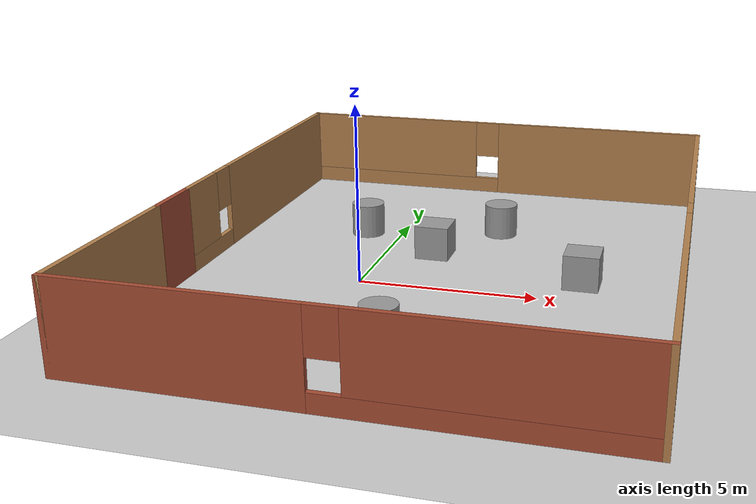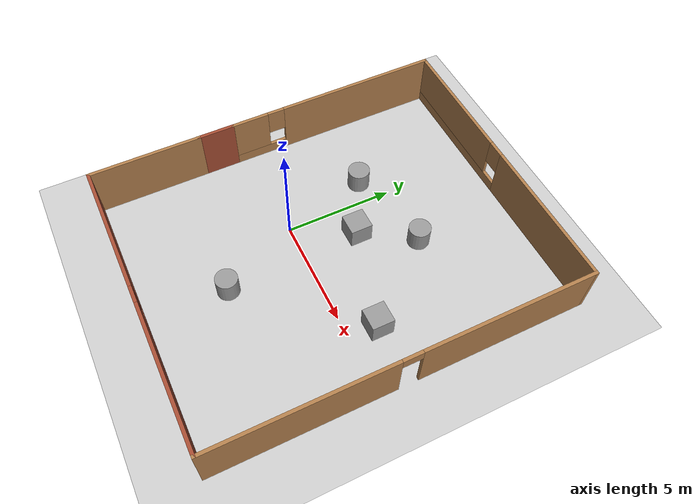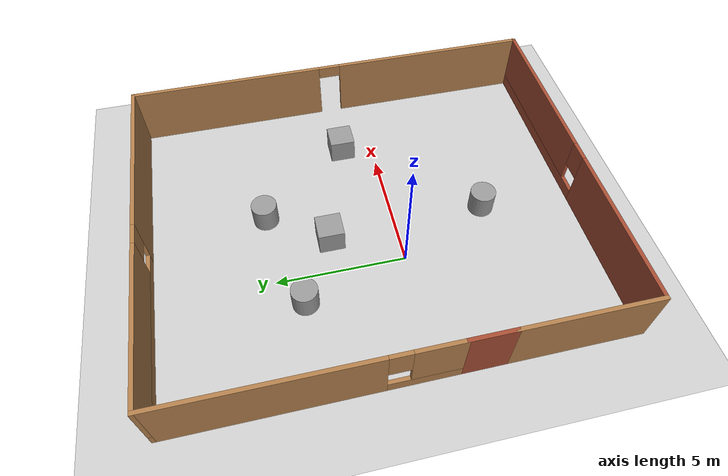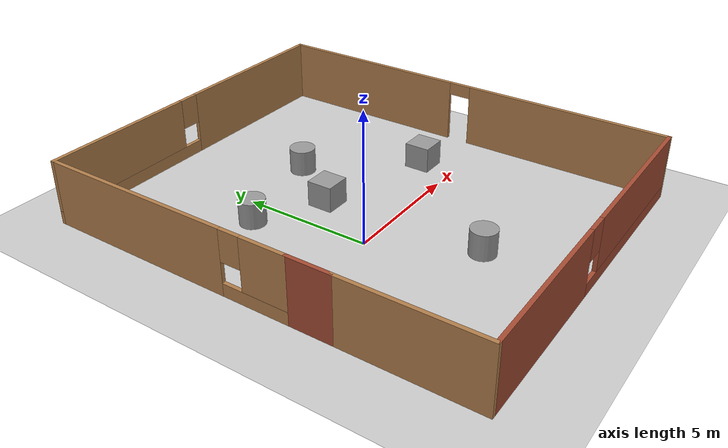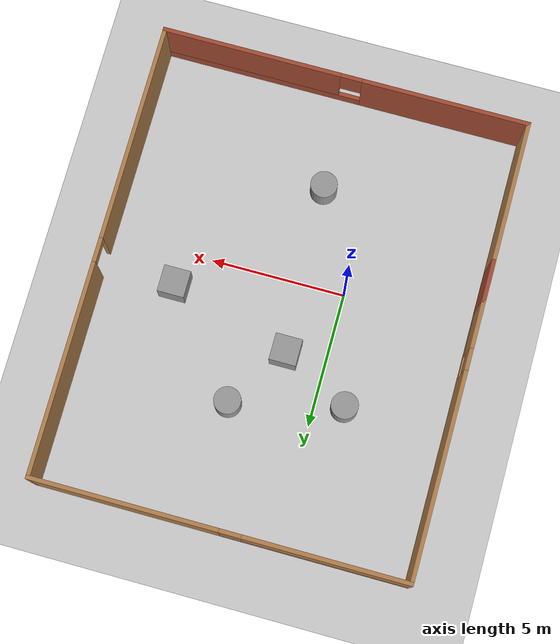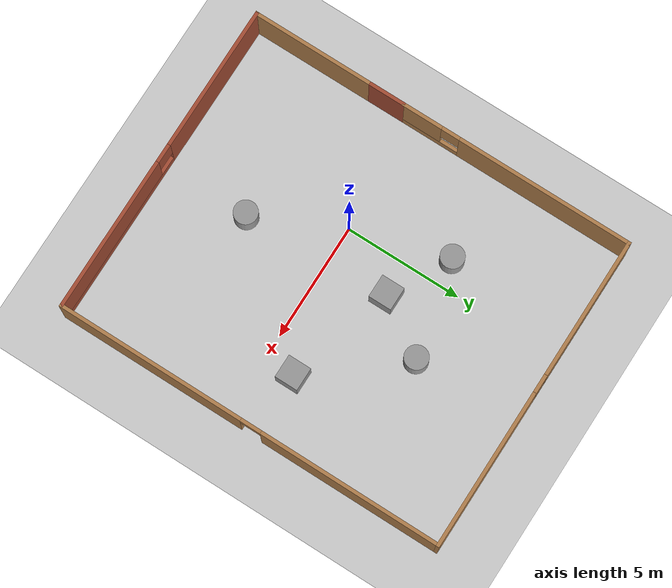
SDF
<sdf version="1.6">
 <world name="default">
  <light name="sun" type="directional">
   <pose>0 0 10 0 -0 0</pose>
   <diffuse>0.8 0.8 0.8 1</diffuse>
   <specular>0.2 0.2 0.2 1</specular>
   <attenuation>
    <range>1000</range>
    <constant>0.9</constant>
    <linear>0.01</linear>
    <quadratic>0.001</quadratic>
   </attenuation>
   <direction>0.5 0.1 -0.9</direction>
  </light>
  <model name="ground_plane">
   <static>1</static>
   <link name="link">
    <collision name="collision">
     <geometry><plane><normal>0 0 1</normal><size>100 100</size></plane></geometry>
     <surface><friction><ode><mu>100</mu><mu2>50</mu2></ode></friction></surface>
    </collision>
    <visual name="visual">
     <cast_shadows>0</cast_shadows>
     <geometry><plane><normal>0 0 1</normal><size>100 100</size></plane></geometry>
     <material>
      <script><uri>file://media/materials/scripts/gazebo.material</uri><name>Gazebo/Grey</name></script>
     </material>
    </visual>
    <velocity_decay><linear>0</linear><angular>0</angular></velocity_decay>
   </link>
  </model>
  <scene><ambient>0.4 0.4 0.4 1</ambient><background>0.7 0.7 0.7 1</background><shadows>0</shadows></scene>
  <physics name="default_physics" default="0" type="ode">
   <max_step_size>0.01</max_step_size>
   <real_time_factor>1</real_time_factor>
   <real_time_update_rate>0</real_time_update_rate>
  </physics>
  <gravity>0 0 -9.8</gravity>
  <magnetic_field>6e-06 2.3e-05 -4.2e-05</magnetic_field>
  <atmosphere type="adiabatic"/>
  <spherical_coordinates>
   <surface_model>EARTH_WGS84</surface_model>
   <latitude_deg>0</latitude_deg>
   <longitude_deg>0</longitude_deg>
   <elevation>0</elevation>
   <heading_deg>0</heading_deg>
  </spherical_coordinates>
  <model name="unit_box">
   <pose>1.48012 2.64683 0.49907 -0.0001 0 0</pose>
   <link name="link">
    <inertial>
     <mass>1</mass>
     <inertia>
      <ixx>0.166667</ixx>
      <ixy>0</ixy>
      <ixz>0</ixz>
      <iyy>0.166667</iyy>
      <iyz>0</iyz>
      <izz>0.166667</izz>
     </inertia>
    </inertial>
    <collision name="collision"><geometry><box><size>1 1 1</size></box></geometry></collision>
    <visual name="visual">
     <geometry><box><size>1 1 1</size></box></geometry>
     <material>
      <script><name>Gazebo/Grey</name><uri>file://media/materials/scripts/gazebo.material</uri></script>
     </material>
    </visual>
   </link>
  </model>
  <model name="unit_cylinder">
   <pose>3.00035 4.96952 0.499096 4.8e-05 4.8e-05 -5e-06</pose>
   <link name="link">
    <inertial>
     <mass>1</mass>
     <inertia><ixx>0.145833</ixx><ixy>0</ixy><ixz>0</ixz><iyy>0.145833</iyy><iyz>0</iyz><izz>0.125</izz></inertia>
    </inertial>
    <collision name="collision">
     <geometry><cylinder><radius>0.5</radius><length>1</length></cylinder></geometry>
    </collision>
    <visual name="visual">
     <geometry><cylinder><radius>0.5</radius><length>1</length></cylinder></geometry>
     <material>
      <script><name>Gazebo/Grey</name><uri>file://media/materials/scripts/gazebo.material</uri></script>
     </material>
    </visual>
   </link>
  </model>
  <model name="unit_cylinder_0">
   <pose>1.74915 -3.62884 0.49912 0 0 -4e-06</pose>
   <link name="link">
    <inertial>
     <mass>1</mass>
     <inertia><ixx>0.145833</ixx><ixy>0</ixy><ixz>0</ixz><iyy>0.145833</iyy><iyz>0</iyz><izz>0.125</izz></inertia>
    </inertial>
    <collision name="collision">
     <geometry><cylinder><radius>0.5</radius><length>1</length></cylinder></geometry>
    </collision>
    <visual name="visual">
     <geometry><cylinder><radius>0.5</radius><length>1</length></cylinder></geometry>
     <material>
      <script><name>Gazebo/Grey</name><uri>file://media/materials/scripts/gazebo.material</uri></script>
     </material>
    </visual>
   </link>
  </model>
  <model name="unit_box_0">
   <pose>6.03991 1.30274 0.49967 0.00066 -0 0</pose>
   <link name="link">
    <inertial>
     <mass>1</mass>
     <inertia>
      <ixx>0.166667</ixx>
      <ixy>0</ixy>
      <ixz>0</ixz>
      <iyy>0.166667</iyy>
      <iyz>0</iyz>
      <izz>0.166667</izz>
     </inertia>
    </inertial>
    <collision name="collision"><geometry><box><size>1 1 1</size></box></geometry></collision>
    <visual name="visual">
     <geometry><box><size>1 1 1</size></box></geometry>
     <material>
      <script><name>Gazebo/Grey</name><uri>file://media/materials/scripts/gazebo.material</uri></script>
     </material>
    </visual>
   </link>
  </model>
  <model name="unit_cylinder_1">
   <pose>-1.07892 4.03692 0.499824 -0.000249 -0.000249 -2e-06</pose>
   <link name="link">
    <inertial>
     <mass>1</mass>
     <inertia><ixx>0.145833</ixx><ixy>0</ixy><ixz>0</ixz><iyy>0.145833</iyy><iyz>0</iyz><izz>0.125</izz></inertia>
    </inertial>
    <collision name="collision">
     <geometry><cylinder><radius>0.5</radius><length>1</length></cylinder></geometry>
    </collision>
    <visual name="visual">
     <geometry><cylinder><radius>0.5</radius><length>1</length></cylinder></geometry>
     <material>
      <script><name>Gazebo/Grey</name><uri>file://media/materials/scripts/gazebo.material</uri></script>
     </material>
    </visual>
   </link>
  </model>
  <model name="multiagent">
   <pose>1.97 1.105 0 0 -0 0</pose>
   <link name="Wall_0">
    <collision name="Wall_0_Collision">
     <geometry><box><size>1.75 0.15 2.5</size></box></geometry>
     <pose>0 0 1.25 0 -0 0</pose>
    </collision>
    <visual name="Wall_0_Visual">
     <pose>0 0 1.25 0 -0 0</pose>
     <geometry><box><size>1.75 0.15 2.5</size></box></geometry>
     <material>
      <script><uri>file://media/materials/scripts/gazebo.material</uri><name>Gazebo/Bricks</name></script>
      <ambient>1 1 1 1</ambient>
     </material>
     <meta><layer>0</layer></meta>
    </visual>
    <pose>-6.8 -2.525 0 0 0 -1.5708</pose>
   </link>
   <link name="Wall_1">
    <collision name="Wall_1_Collision">
     <geometry><box><size>5.25 0.15 2.5</size></box></geometry>
     <pose>0 0 1.25 0 -0 0</pose>
    </collision>
    <visual name="Wall_1_Visual">
     <pose>0 0 1.25 0 -0 0</pose>
     <geometry><box><size>5.25 0.15 2.5</size></box></geometry>
     <material>
      <script><uri>file://media/materials/scripts/gazebo.material</uri><name>Gazebo/Wood</name></script>
      <ambient>1 1 1 1</ambient>
     </material>
     <meta><layer>0</layer></meta>
    </visual>
    <pose>-6.8 -5.875 0 0 0 -1.5708</pose>
   </link>
   <link name="Wall_2">
    <pose>0 -8.425 0 0 -0 0</pose>
    <visual name="Wall_2_Visual_0">
     <pose>-3.74605 0 1.25 0 -0 0</pose>
     <geometry><box><size>6.25791 0.15 2.5</size></box></geometry>
     <material>
      <script><uri>file://media/materials/scripts/gazebo.material</uri><name>Gazebo/Bricks</name></script>
      <ambient>1 1 1 1</ambient>
     </material>
     <meta><layer>0</layer></meta>
    </visual>
    <collision name="Wall_2_Collision_0">
     <geometry><box><size>6.25791 0.15 2.5</size></box></geometry>
     <pose>-3.74605 0 1.25 0 -0 0</pose>
    </collision>
    <visual name="Wall_2_Visual_1">
     <pose>3.12895 0 0.25 0 -0 0</pose>
     <geometry><box><size>7.49209 0.15 0.5</size></box></geometry>
     <material>
      <script><uri>file://media/materials/scripts/gazebo.material</uri><name>Gazebo/Bricks</name></script>
      <ambient>1 1 1 1</ambient>
     </material>
     <meta><layer>0</layer></meta>
    </visual>
    <collision name="Wall_2_Collision_1">
     <geometry><box><size>7.49209 0.15 0.5</size></box></geometry>
     <pose>3.12895 0 0.25 0 -0 0</pose>
    </collision>
    <visual name="Wall_2_Visual_2">
     <pose>3.52895 0 1.5 0 -0 0</pose>
     <geometry><box><size>6.6921 0.15 2</size></box></geometry>
     <material>
      <script><uri>file://media/materials/scripts/gazebo.material</uri><name>Gazebo/Bricks</name></script>
      <ambient>1 1 1 1</ambient>
     </material>
     <meta><layer>0</layer></meta>
    </visual>
    <collision name="Wall_2_Collision_2">
     <geometry><box><size>6.6921 0.15 2</size></box></geometry>
     <pose>3.52895 0 1.5 0 -0 0</pose>
    </collision>
    <visual name="Wall_2_Visual_3">
     <pose>-0.217095 0 1.9 0 -0 0</pose>
     <geometry><box><size>0.8 0.15 1.2</size></box></geometry>
     <material>
      <script><uri>file://media/materials/scripts/gazebo.material</uri><name>Gazebo/Bricks</name></script>
      <ambient>1 1 1 1</ambient>
     </material>
     <meta><layer>0</layer></meta>
    </visual>
    <collision name="Wall_2_Collision_3">
     <geometry><box><size>0.8 0.15 1.2</size></box></geometry>
     <pose>-0.217095 0 1.9 0 -0 0</pose>
    </collision>
   </link>
   <link name="Wall_3">
    <pose>6.8 0 0 0 -0 1.5708</pose>
    <visual name="Wall_3_Visual_0">
     <pose>-4.41906 0 1.25 0 -0 0</pose>
     <geometry><box><size>8.16189 0.15 2.5</size></box></geometry>
     <material>
      <script><uri>file://media/materials/scripts/gazebo.material</uri><name>Gazebo/Wood</name></script>
      <ambient>1 1 1 1</ambient>
     </material>
     <meta><layer>0</layer></meta>
    </visual>
    <collision name="Wall_3_Collision_0">
     <geometry><box><size>8.16189 0.15 2.5</size></box></geometry>
     <pose>-4.41906 0 1.25 0 -0 0</pose>
    </collision>
    <visual name="Wall_3_Visual_1">
     <pose>4.53095 0 1.25 0 -0 0</pose>
     <geometry><box><size>7.93811 0.15 2.5</size></box></geometry>
     <material>
      <script><uri>file://media/materials/scripts/gazebo.material</uri><name>Gazebo/Wood</name></script>
      <ambient>1 1 1 1</ambient>
     </material>
     <meta><layer>0</layer></meta>
    </visual>
    <collision name="Wall_3_Collision_1">
     <geometry><box><size>7.93811 0.15 2.5</size></box></geometry>
     <pose>4.53095 0 1.25 0 -0 0</pose>
    </collision>
    <visual name="Wall_3_Visual_2">
     <pose>0.111889 0 2.25 0 -0 0</pose>
     <geometry><box><size>0.9 0.15 0.5</size></box></geometry>
     <material>
      <script><uri>file://media/materials/scripts/gazebo.material</uri><name>Gazebo/Wood</name></script>
      <ambient>1 1 1 1</ambient>
     </material>
     <meta><layer>0</layer></meta>
    </visual>
    <collision name="Wall_3_Collision_2">
     <geometry><box><size>0.9 0.15 0.5</size></box></geometry>
     <pose>0.111889 0 2.25 0 -0 0</pose>
    </collision>
   </link>
   <link name="Wall_4">
    <pose>0 8.425 0 0 -0 3.14159</pose>
    <visual name="Wall_4_Visual_0">
     <pose>-3.4359 0 1.25 0 -0 0</pose>
     <geometry><box><size>6.87819 0.15 2.5</size></box></geometry>
     <material>
      <script><uri>file://media/materials/scripts/gazebo.material</uri><name>Gazebo/Wood</name></script>
      <ambient>1 1 1 1</ambient>
     </material>
     <meta><layer>0</layer></meta>
    </visual>
    <collision name="Wall_4_Collision_0">
     <geometry><box><size>6.87819 0.15 2.5</size></box></geometry>
     <pose>-3.4359 0 1.25 0 -0 0</pose>
    </collision>
    <visual name="Wall_4_Visual_1">
     <pose>3.4391 0 0.25 0 -0 0</pose>
     <geometry><box><size>6.87181 0.15 0.5</size></box></geometry>
     <material>
      <script><uri>file://media/materials/scripts/gazebo.material</uri><name>Gazebo/Wood</name></script>
      <ambient>1 1 1 1</ambient>
     </material>
     <meta><layer>0</layer></meta>
    </visual>
    <collision name="Wall_4_Collision_1">
     <geometry><box><size>6.87181 0.15 0.5</size></box></geometry>
     <pose>3.4391 0 0.25 0 -0 0</pose>
    </collision>
    <visual name="Wall_4_Visual_2">
     <pose>3.8391 0 1.5 0 -0 0</pose>
     <geometry><box><size>6.07181 0.15 2</size></box></geometry>
     <material>
      <script><uri>file://media/materials/scripts/gazebo.material</uri><name>Gazebo/Wood</name></script>
      <ambient>1 1 1 1</ambient>
     </material>
     <meta><layer>0</layer></meta>
    </visual>
    <collision name="Wall_4_Collision_2">
     <geometry><box><size>6.07181 0.15 2</size></box></geometry>
     <pose>3.8391 0 1.5 0 -0 0</pose>
    </collision>
    <visual name="Wall_4_Visual_3">
     <pose>0.403191 0 1.9 0 -0 0</pose>
     <geometry><box><size>0.8 0.15 1.2</size></box></geometry>
     <material>
      <script><uri>file://media/materials/scripts/gazebo.material</uri><name>Gazebo/Wood</name></script>
      <ambient>1 1 1 1</ambient>
     </material>
     <meta><layer>0</layer></meta>
    </visual>
    <collision name="Wall_4_Collision_3">
     <geometry><box><size>0.8 0.15 1.2</size></box></geometry>
     <pose>0.403191 0 1.9 0 -0 0</pose>
    </collision>
   </link>
   <link name="Wall_5">
    <pose>-6.8 3.375 0 0 0 -1.5708</pose>
    <visual name="Wall_5_Visual_0">
     <pose>-1.29378 0 1.25 0 -0 0</pose>
     <geometry><box><size>7.66244 0.15 2.5</size></box></geometry>
     <material>
      <script><uri>file://media/materials/scripts/gazebo.material</uri><name>Gazebo/Wood</name></script>
      <ambient>1 1 1 1</ambient>
     </material>
     <meta><layer>0</layer></meta>
    </visual>
    <collision name="Wall_5_Collision_0">
     <geometry><box><size>7.66244 0.15 2.5</size></box></geometry>
     <pose>-1.29378 0 1.25 0 -0 0</pose>
    </collision>
    <visual name="Wall_5_Visual_1">
     <pose>3.83122 0 0.25 0 -0 0</pose>
     <geometry><box><size>2.58756 0.15 0.5</size></box></geometry>
     <material>
      <script><uri>file://media/materials/scripts/gazebo.material</uri><name>Gazebo/Wood</name></script>
      <ambient>1 1 1 1</ambient>
     </material>
     <meta><layer>0</layer></meta>
    </visual>
    <collision name="Wall_5_Collision_1">
     <geometry><box><size>2.58756 0.15 0.5</size></box></geometry>
     <pose>3.83122 0 0.25 0 -0 0</pose>
    </collision>
    <visual name="Wall_5_Visual_2">
     <pose>4.23122 0 1.5 0 -0 0</pose>
     <geometry><box><size>1.78756 0.15 2</size></box></geometry>
     <material>
      <script><uri>file://media/materials/scripts/gazebo.material</uri><name>Gazebo/Wood</name></script>
      <ambient>1 1 1 1</ambient>
     </material>
     <meta><layer>0</layer></meta>
    </visual>
    <collision name="Wall_5_Collision_2">
     <geometry><box><size>1.78756 0.15 2</size></box></geometry>
     <pose>4.23122 0 1.5 0 -0 0</pose>
    </collision>
    <visual name="Wall_5_Visual_3">
     <pose>2.93744 0 1.9 0 -0 0</pose>
     <geometry><box><size>0.8 0.15 1.2</size></box></geometry>
     <material>
      <script><uri>file://media/materials/scripts/gazebo.material</uri><name>Gazebo/Wood</name></script>
      <ambient>1 1 1 1</ambient>
     </material>
     <meta><layer>0</layer></meta>
    </visual>
    <collision name="Wall_5_Collision_3">
     <geometry><box><size>0.8 0.15 1.2</size></box></geometry>
     <pose>2.93744 0 1.9 0 -0 0</pose>
    </collision>
   </link>
   <static>1</static>
  </model>
 </world>
</sdf>
